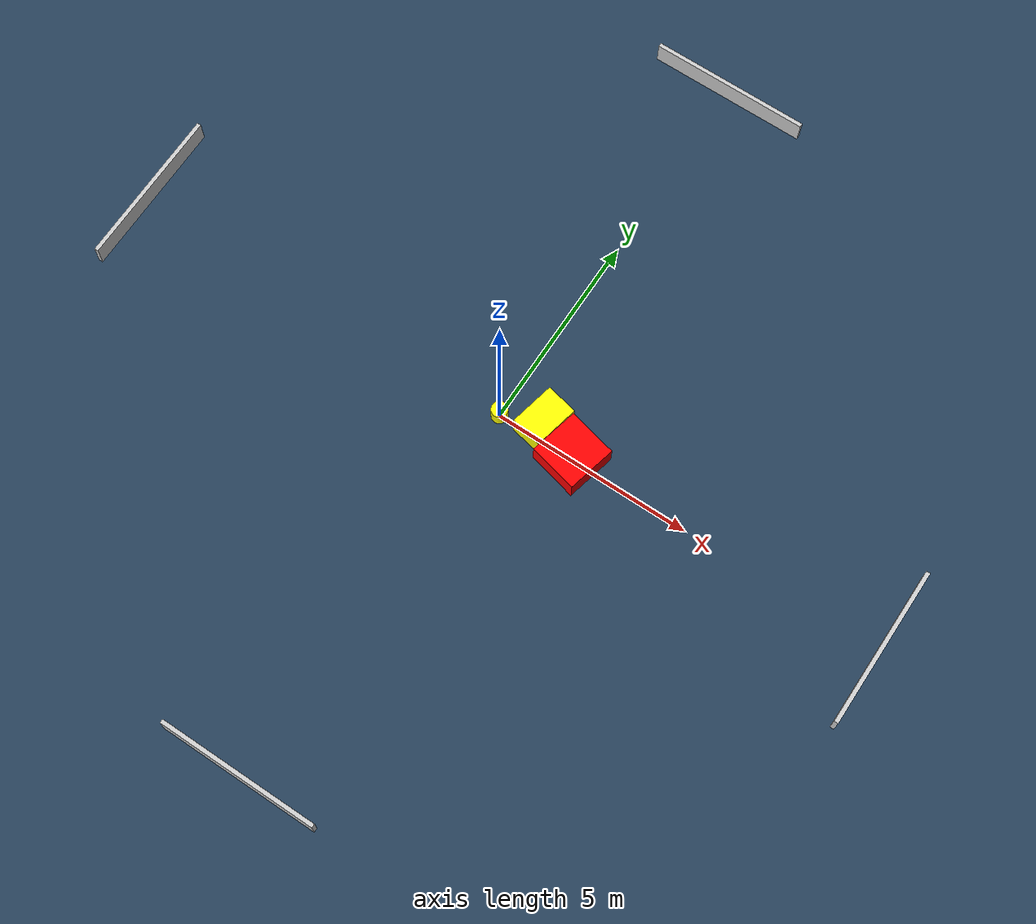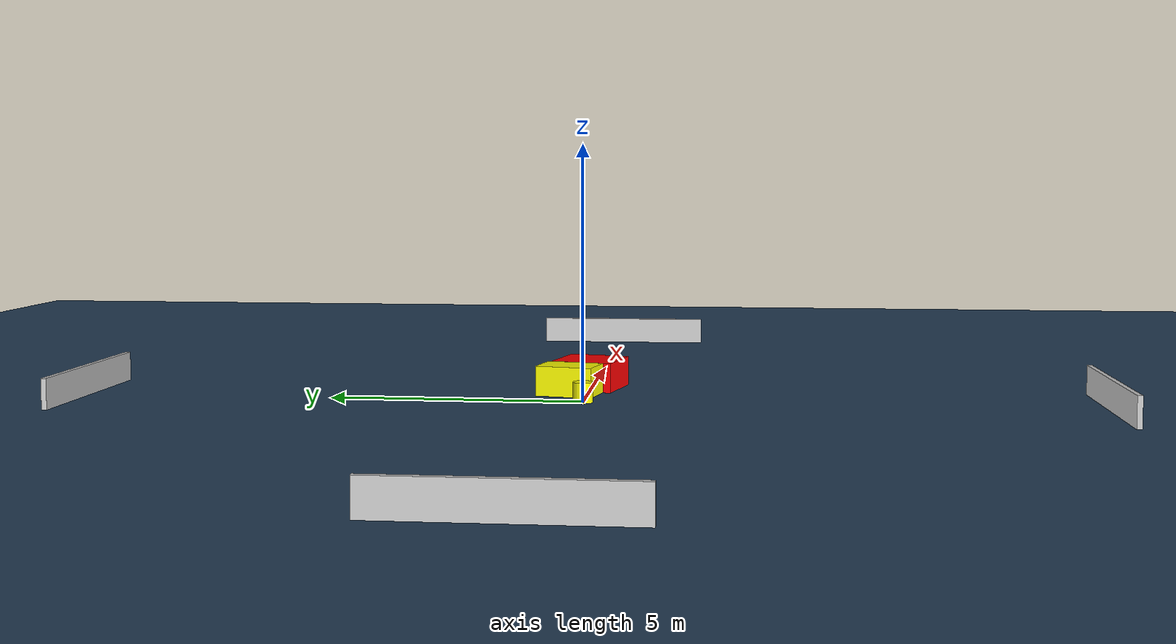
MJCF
<?xml version="1.0" ?>
<mujoco model="generated_environment">
  <option timestep="0.01" integrator="RK4" cone="elliptic"/>
  <default>
    <geom density="1"/>
  </default>
  <asset>
    <texture builtin="gradient" height="3072" name="skybox" rgb1="0.3 0.5 0.7" rgb2="0 0 0" type="skybox" width="512"/>
    <texture builtin="checker" height="300" name="groundplane" rgb1="0.2 0.3 0.4" rgb2="0.1 0.2 0.3" type="2d" width="300"/>
    <material name="groundplane" reflectance="0.2" texrepeat="5 5" texture="groundplane"/>
  </asset>
  <worldbody>
    <light dir="0 0 -1" directional="true" pos="0 0 1.5"/>
    <geom condim="3" friction="0.5 0.005 0.001" material="groundplane" name="floor" pos="0 0 0" size="0 0 0.05" type="plane"/>
    <body name="walls">
      <geom name="wall_1" condim="4" pos="-10.0 0.0 0.3" rgba="0.800000011920929 0.800000011920929 0.800000011920929 1.0" size="0.05 2.0 0.3" type="box"/>
      <geom name="wall_2" condim="4" pos="10.0 0.0 0.3" rgba="0.800000011920929 0.800000011920929 0.800000011920929 1.0" size="0.05 2.0 0.3" type="box"/>
      <geom name="wall_3" condim="4" pos="0.0 -10.0 0.3" rgba="0.800000011920929 0.800000011920929 0.800000011920929 1.0" size="2.0 0.05 0.3" type="box"/>
      <geom name="wall_4" condim="4" pos="0.0 10.0 0.3" rgba="0.800000011920929 0.800000011920929 0.800000011920929 1.0" size="2.0 0.05 0.3" type="box"/>
    </body>
    <body name="robot">
      <joint name="joint_x" type="slide" pos="0 0 0" axis="1 0 0"/>
      <joint name="joint_y" type="slide" pos="0 0 0" axis="0 1 0"/>
      <geom name="robot" type="cylinder" pos="0.0 0.0 0.2" size="0.2 0.2 0.0" mass="5.0" friction="1.0 0.005 0.0001" condim="4" rgba="1.0 1.0 0.0 1.0"/>
    </body>
    <body name="obstacle_1_movable">
      <geom name="obstacle_1_movable" condim="4" pos="0.9655797942792854 0.3727589969171901 0.3" euler="0 0 258.0701730343626" friction="0.0 0.005 0.001" rgba="1.0 1.0 0.0 1.0" size="0.5773782610091217 0.399942515991431 0.3" type="box" mass="0.1"/>
      <joint type="free"/>
    </body>
    <body name="obstacle_2_static">
      <geom name="obstacle_2_static" condim="4" pos="1.9537619977976606 0.039469062909078846 0.3" euler="0 0 346.8926986871944" friction="0.0 0.005 0.001" rgba="1.0 0.0 0.0 1.0" size="0.6220802735282118 0.6263388980038664 0.3" type="box"/>
    </body>
  </worldbody>
  <actuator>
    <motor name="actuator_x" joint="joint_x" gear="1" ctrlrange="-1 1"/>
    <motor name="actuator_y" joint="joint_y" gear="1" ctrlrange="-1 1"/>
  </actuator>
</mujoco>
